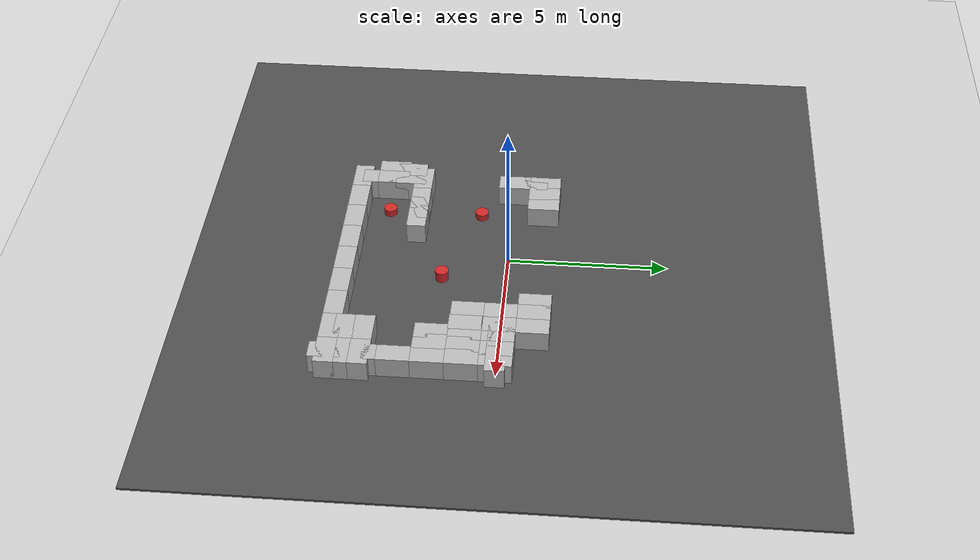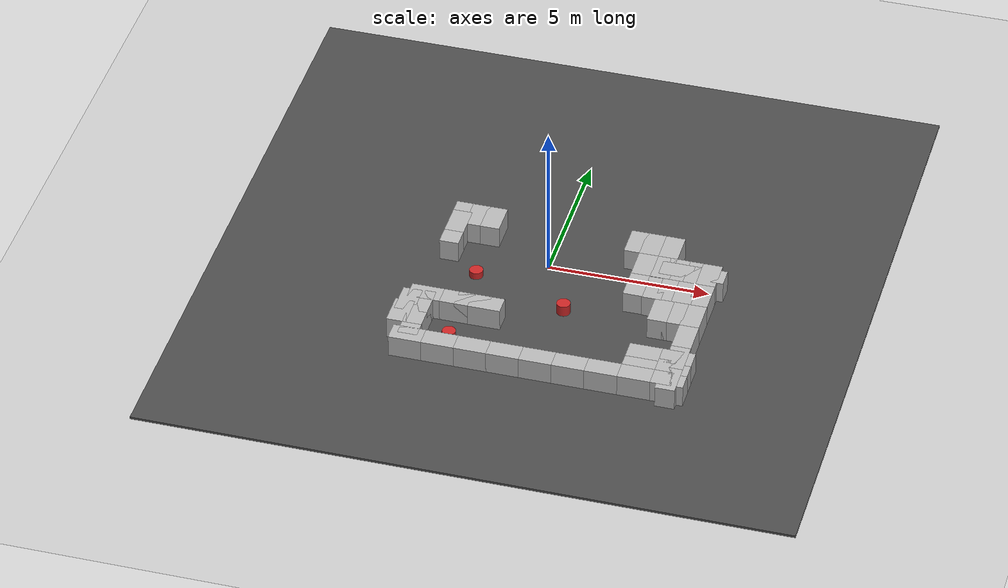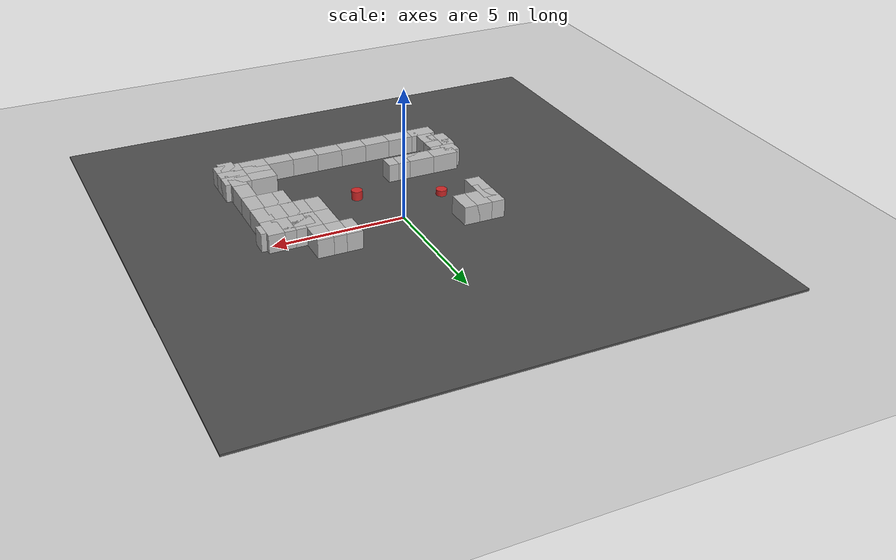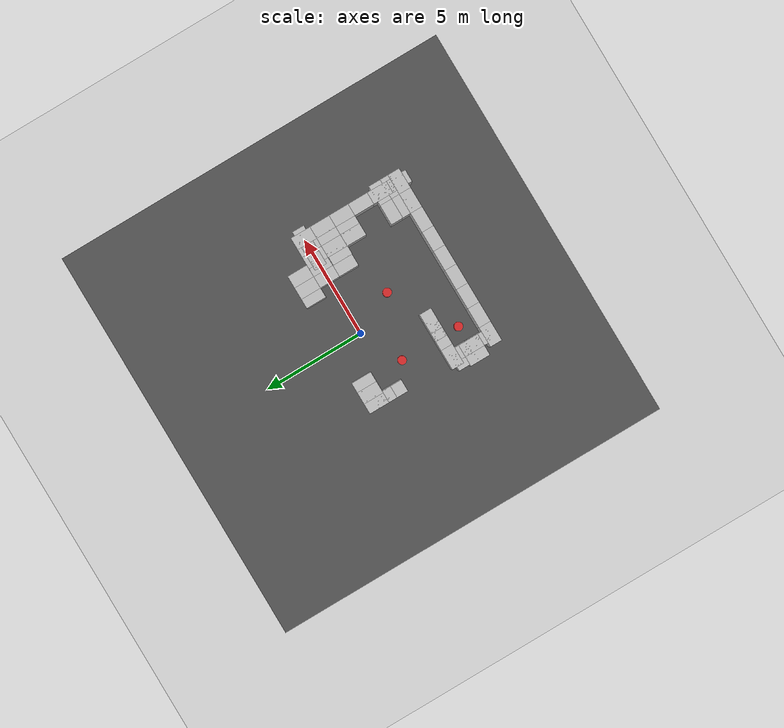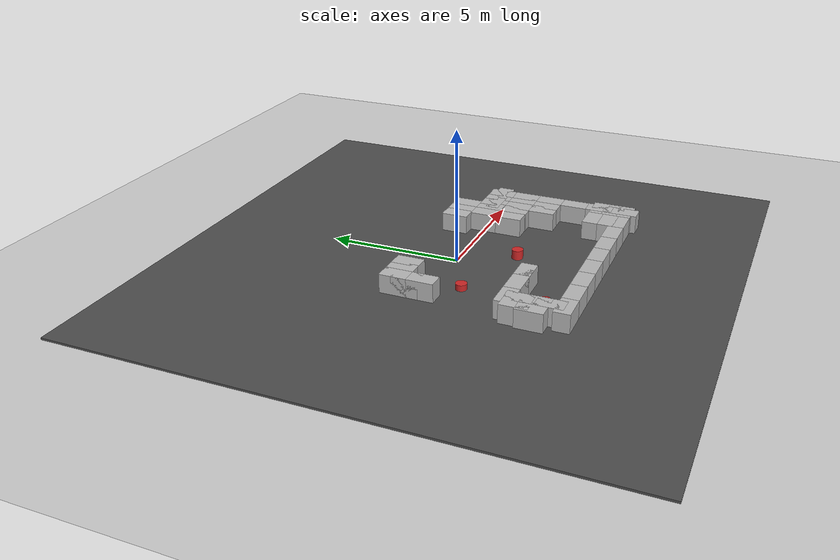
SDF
<sdf version="1.4">
 <world name="default">
  <model name="ground_plane">
   <static>1</static>
   <link name="link">
    <collision name="collision">
     <geometry><plane><normal>0 0 1</normal><size>100 100</size></plane></geometry>
     <surface><friction><ode><mu>100</mu><mu2>50</mu2></ode></friction></surface>
    </collision>
    <visual name="visual">
     <cast_shadows>0</cast_shadows>
     <geometry><plane><normal>0 0 1</normal><size>100 100</size></plane></geometry>
     <material>
      <script><uri>file://media/materials/scripts/gazebo.material</uri><name>Gazebo/Grey</name></script>
     </material>
    </visual>
    <velocity_decay><linear>0</linear><angular>0</angular></velocity_decay>
   </link>
  </model>
  <model name="wall_0">
   <static>1</static>
   <link name="link">
    <pose>0 0 0.25 0 -0 0</pose>
    <collision name="collision"><geometry><box><size>1 0.6 1</size></box></geometry></collision>
    <visual name="visual">
     <geometry>
      <mesh><uri>model://brick_box_3x1x3/meshes/simple_box.dae</uri><scale>1 0.6 1</scale></mesh>
     </geometry>
     <material>
      <script>
       <uri>model://brick_box_3x1x3/materials/scripts</uri>
       <uri>model://brick_box_3x1x3/materials/textures</uri>
       <name>BrickBox/Diffuse</name>
      </script>
     </material>
    </visual>
    <velocity_decay><linear>0</linear><angular>0</angular></velocity_decay>
   </link>
   <pose>4 -5 0 0 -0 0</pose>
  </model>
  <model name="wall_1">
   <static>1</static>
   <link name="link">
    <pose>0 0 0.25 0 -0 0</pose>
    <collision name="collision"><geometry><box><size>1 0.6 1</size></box></geometry></collision>
    <visual name="visual">
     <geometry>
      <mesh><uri>model://brick_box_3x1x3/meshes/simple_box.dae</uri><scale>1 0.6 1</scale></mesh>
     </geometry>
     <material>
      <script>
       <uri>model://brick_box_3x1x3/materials/scripts</uri>
       <uri>model://brick_box_3x1x3/materials/textures</uri>
       <name>BrickBox/Diffuse</name>
      </script>
     </material>
    </visual>
    <velocity_decay><linear>0</linear><angular>0</angular></velocity_decay>
   </link>
   <pose>3 -5 0 0 -0 0</pose>
  </model>
  <model name="wall_2">
   <static>1</static>
   <link name="link">
    <pose>0 0 0.25 0 -0 0</pose>
    <collision name="collision"><geometry><box><size>1 0.6 1</size></box></geometry></collision>
    <visual name="visual">
     <geometry>
      <mesh><uri>model://brick_box_3x1x3/meshes/simple_box.dae</uri><scale>1 0.6 1</scale></mesh>
     </geometry>
     <material>
      <script>
       <uri>model://brick_box_3x1x3/materials/scripts</uri>
       <uri>model://brick_box_3x1x3/materials/textures</uri>
       <name>BrickBox/Diffuse</name>
      </script>
     </material>
    </visual>
    <velocity_decay><linear>0</linear><angular>0</angular></velocity_decay>
   </link>
   <pose>2 -5 0 0 -0 0</pose>
  </model>
  <model name="wall_3">
   <static>1</static>
   <link name="link">
    <pose>0 0 0.25 0 -0 0</pose>
    <collision name="collision"><geometry><box><size>1 0.6 1</size></box></geometry></collision>
    <visual name="visual">
     <geometry>
      <mesh><uri>model://brick_box_3x1x3/meshes/simple_box.dae</uri><scale>1 0.6 1</scale></mesh>
     </geometry>
     <material>
      <script>
       <uri>model://brick_box_3x1x3/materials/scripts</uri>
       <uri>model://brick_box_3x1x3/materials/textures</uri>
       <name>BrickBox/Diffuse</name>
      </script>
     </material>
    </visual>
    <velocity_decay><linear>0</linear><angular>0</angular></velocity_decay>
   </link>
   <pose>5 -5 0 0 -0 0</pose>
  </model>
  <model name="wall_4">
   <static>1</static>
   <link name="link">
    <pose>0 0 0.25 0 -0 0</pose>
    <collision name="collision"><geometry><box><size>0.6 1 1</size></box></geometry></collision>
    <visual name="visual">
     <geometry>
      <mesh><uri>model://brick_box_3x1x3/meshes/simple_box.dae</uri><scale>0.6 1 1</scale></mesh>
     </geometry>
     <material>
      <script>
       <uri>model://brick_box_3x1x3/materials/scripts</uri>
       <uri>model://brick_box_3x1x3/materials/textures</uri>
       <name>BrickBox/Diffuse</name>
      </script>
     </material>
    </visual>
    <velocity_decay><linear>0</linear><angular>0</angular></velocity_decay>
   </link>
   <pose>5 -5 0 0 -0 0</pose>
  </model>
  <model name="wall_5">
   <static>1</static>
   <link name="link">
    <pose>0 0 0.25 0 -0 0</pose>
    <collision name="collision"><geometry><box><size>0.6 1 1</size></box></geometry></collision>
    <visual name="visual">
     <geometry>
      <mesh><uri>model://brick_box_3x1x3/meshes/simple_box.dae</uri><scale>0.6 1 1</scale></mesh>
     </geometry>
     <material>
      <script>
       <uri>model://brick_box_3x1x3/materials/scripts</uri>
       <uri>model://brick_box_3x1x3/materials/textures</uri>
       <name>BrickBox/Diffuse</name>
      </script>
     </material>
    </visual>
    <velocity_decay><linear>0</linear><angular>0</angular></velocity_decay>
   </link>
   <pose>5 -4 0 0 -0 0</pose>
  </model>
  <model name="wall_6">
   <static>1</static>
   <link name="link">
    <pose>0 0 0.25 0 -0 0</pose>
    <collision name="collision"><geometry><box><size>1 0.6 1</size></box></geometry></collision>
    <visual name="visual">
     <geometry>
      <mesh><uri>model://brick_box_3x1x3/meshes/simple_box.dae</uri><scale>1 0.6 1</scale></mesh>
     </geometry>
     <material>
      <script>
       <uri>model://brick_box_3x1x3/materials/scripts</uri>
       <uri>model://brick_box_3x1x3/materials/textures</uri>
       <name>BrickBox/Diffuse</name>
      </script>
     </material>
    </visual>
    <velocity_decay><linear>0</linear><angular>0</angular></velocity_decay>
   </link>
   <pose>1 -5 0 0 -0 0</pose>
  </model>
  <model name="wall_7">
   <static>1</static>
   <link name="link">
    <pose>0 0 0.25 0 -0 0</pose>
    <collision name="collision"><geometry><box><size>1 0.6 1</size></box></geometry></collision>
    <visual name="visual">
     <geometry>
      <mesh><uri>model://brick_box_3x1x3/meshes/simple_box.dae</uri><scale>1 0.6 1</scale></mesh>
     </geometry>
     <material>
      <script>
       <uri>model://brick_box_3x1x3/materials/scripts</uri>
       <uri>model://brick_box_3x1x3/materials/textures</uri>
       <name>BrickBox/Diffuse</name>
      </script>
     </material>
    </visual>
    <velocity_decay><linear>0</linear><angular>0</angular></velocity_decay>
   </link>
   <pose>0 -5 0 0 -0 0</pose>
  </model>
  <model name="wall_8">
   <static>1</static>
   <link name="link">
    <pose>0 0 0.25 0 -0 0</pose>
    <collision name="collision"><geometry><box><size>1 0.6 1</size></box></geometry></collision>
    <visual name="visual">
     <geometry>
      <mesh><uri>model://brick_box_3x1x3/meshes/simple_box.dae</uri><scale>1 0.6 1</scale></mesh>
     </geometry>
     <material>
      <script>
       <uri>model://brick_box_3x1x3/materials/scripts</uri>
       <uri>model://brick_box_3x1x3/materials/textures</uri>
       <name>BrickBox/Diffuse</name>
      </script>
     </material>
    </visual>
    <velocity_decay><linear>0</linear><angular>0</angular></velocity_decay>
   </link>
   <pose>-1 -5 0 0 -0 0</pose>
  </model>
  <model name="wall_9">
   <static>1</static>
   <link name="link">
    <pose>0 0 0.25 0 -0 0</pose>
    <collision name="collision"><geometry><box><size>1 0.6 1</size></box></geometry></collision>
    <visual name="visual">
     <geometry>
      <mesh><uri>model://brick_box_3x1x3/meshes/simple_box.dae</uri><scale>1 0.6 1</scale></mesh>
     </geometry>
     <material>
      <script>
       <uri>model://brick_box_3x1x3/materials/scripts</uri>
       <uri>model://brick_box_3x1x3/materials/textures</uri>
       <name>BrickBox/Diffuse</name>
      </script>
     </material>
    </visual>
    <velocity_decay><linear>0</linear><angular>0</angular></velocity_decay>
   </link>
   <pose>-2 -5 0 0 -0 0</pose>
  </model>
  <model name="wall_10">
   <static>1</static>
   <link name="link">
    <pose>0 0 0.25 0 -0 0</pose>
    <collision name="collision"><geometry><box><size>1 0.6 1</size></box></geometry></collision>
    <visual name="visual">
     <geometry>
      <mesh><uri>model://brick_box_3x1x3/meshes/simple_box.dae</uri><scale>1 0.6 1</scale></mesh>
     </geometry>
     <material>
      <script>
       <uri>model://brick_box_3x1x3/materials/scripts</uri>
       <uri>model://brick_box_3x1x3/materials/textures</uri>
       <name>BrickBox/Diffuse</name>
      </script>
     </material>
    </visual>
    <velocity_decay><linear>0</linear><angular>0</angular></velocity_decay>
   </link>
   <pose>-3 -5 0 0 -0 0</pose>
  </model>
  <model name="wall_13">
   <static>1</static>
   <link name="link">
    <pose>0 0 0.25 0 -0 0</pose>
    <collision name="collision"><geometry><box><size>0.6 1 1</size></box></geometry></collision>
    <visual name="visual">
     <geometry>
      <mesh><uri>model://brick_box_3x1x3/meshes/simple_box.dae</uri><scale>0.6 1 1</scale></mesh>
     </geometry>
     <material>
      <script>
       <uri>model://brick_box_3x1x3/materials/scripts</uri>
       <uri>model://brick_box_3x1x3/materials/textures</uri>
       <name>BrickBox/Diffuse</name>
      </script>
     </material>
    </visual>
    <velocity_decay><linear>0</linear><angular>0</angular></velocity_decay>
   </link>
   <pose>5 -3 0 0 -0 0</pose>
  </model>
  <model name="wall_14">
   <static>1</static>
   <link name="link">
    <pose>0 0 0.25 0 -0 0</pose>
    <collision name="collision"><geometry><box><size>0.6 1 1</size></box></geometry></collision>
    <visual name="visual">
     <geometry>
      <mesh><uri>model://brick_box_3x1x3/meshes/simple_box.dae</uri><scale>0.6 1 1</scale></mesh>
     </geometry>
     <material>
      <script>
       <uri>model://brick_box_3x1x3/materials/scripts</uri>
       <uri>model://brick_box_3x1x3/materials/textures</uri>
       <name>BrickBox/Diffuse</name>
      </script>
     </material>
    </visual>
    <velocity_decay><linear>0</linear><angular>0</angular></velocity_decay>
   </link>
   <pose>5 -2 0 0 -0 0</pose>
  </model>
  <model name="wall_15">
   <static>1</static>
   <link name="link">
    <pose>0 0 0.25 0 -0 0</pose>
    <collision name="collision"><geometry><box><size>0.6 1 1</size></box></geometry></collision>
    <visual name="visual">
     <geometry>
      <mesh><uri>model://brick_box_3x1x3/meshes/simple_box.dae</uri><scale>0.6 1 1</scale></mesh>
     </geometry>
     <material>
      <script>
       <uri>model://brick_box_3x1x3/materials/scripts</uri>
       <uri>model://brick_box_3x1x3/materials/textures</uri>
       <name>BrickBox/Diffuse</name>
      </script>
     </material>
    </visual>
    <velocity_decay><linear>0</linear><angular>0</angular></velocity_decay>
   </link>
   <pose>5 -1 0 0 -0 0</pose>
  </model>
  <model name="wall_16">
   <static>1</static>
   <link name="link">
    <pose>0 0 0.25 0 -0 0</pose>
    <collision name="collision"><geometry><box><size>0.6 1 1</size></box></geometry></collision>
    <visual name="visual">
     <geometry>
      <mesh><uri>model://brick_box_3x1x3/meshes/simple_box.dae</uri><scale>0.6 1 1</scale></mesh>
     </geometry>
     <material>
      <script>
       <uri>model://brick_box_3x1x3/materials/scripts</uri>
       <uri>model://brick_box_3x1x3/materials/textures</uri>
       <name>BrickBox/Diffuse</name>
      </script>
     </material>
    </visual>
    <velocity_decay><linear>0</linear><angular>0</angular></velocity_decay>
   </link>
   <pose>5 0 0 0 -0 0</pose>
  </model>
  <model name="wall_46">
   <static>1</static>
   <link name="link">
    <pose>0 0 0.25 0 -0 0</pose>
    <collision name="collision"><geometry><box><size>1 0.6 1</size></box></geometry></collision>
    <visual name="visual">
     <geometry>
      <mesh><uri>model://brick_box_3x1x3/meshes/simple_box.dae</uri><scale>1 0.6 1</scale></mesh>
     </geometry>
     <material>
      <script>
       <uri>model://brick_box_3x1x3/materials/scripts</uri>
       <uri>model://brick_box_3x1x3/materials/textures</uri>
       <name>BrickBox/Diffuse</name>
      </script>
     </material>
    </visual>
    <velocity_decay><linear>0</linear><angular>0</angular></velocity_decay>
   </link>
   <pose>5 0 0 0 -0 0</pose>
  </model>
  <model name="wall_47">
   <static>1</static>
   <link name="link">
    <pose>0 0 0.25 0 -0 0</pose>
    <collision name="collision"><geometry><box><size>1 0.6 1</size></box></geometry></collision>
    <visual name="visual">
     <geometry>
      <mesh><uri>model://brick_box_3x1x3/meshes/simple_box.dae</uri><scale>1 0.6 1</scale></mesh>
     </geometry>
     <material>
      <script>
       <uri>model://brick_box_3x1x3/materials/scripts</uri>
       <uri>model://brick_box_3x1x3/materials/textures</uri>
       <name>BrickBox/Diffuse</name>
      </script>
     </material>
    </visual>
    <velocity_decay><linear>0</linear><angular>0</angular></velocity_decay>
   </link>
   <pose>4 0 0 0 -0 0</pose>
  </model>
  <model name="wall_58">
   <static>1</static>
   <link name="link">
    <pose>0 0 0.25 0 -0 0</pose>
    <collision name="collision"><geometry><box><size>1 0.6 1</size></box></geometry></collision>
    <visual name="visual">
     <geometry>
      <mesh><uri>model://brick_box_3x1x3/meshes/simple_box.dae</uri><scale>1 0.6 1</scale></mesh>
     </geometry>
     <material>
      <script>
       <uri>model://brick_box_3x1x3/materials/scripts</uri>
       <uri>model://brick_box_3x1x3/materials/textures</uri>
       <name>BrickBox/Diffuse</name>
      </script>
     </material>
    </visual>
    <velocity_decay><linear>0</linear><angular>0</angular></velocity_decay>
   </link>
   <pose>-1.12325 -3.00148 0 0 -0 0</pose>
  </model>
  <model name="wall_62">
   <static>1</static>
   <link name="link">
    <pose>0 0 0.25 0 -0 0</pose>
    <collision name="collision"><geometry><box><size>1 0.6 1</size></box></geometry></collision>
    <visual name="visual">
     <geometry>
      <mesh><uri>model://brick_box_3x1x3/meshes/simple_box.dae</uri><scale>1 0.6 1</scale></mesh>
     </geometry>
     <material>
      <script>
       <uri>model://brick_box_3x1x3/materials/scripts</uri>
       <uri>model://brick_box_3x1x3/materials/textures</uri>
       <name>BrickBox/Diffuse</name>
      </script>
     </material>
    </visual>
    <velocity_decay><linear>0</linear><angular>0</angular></velocity_decay>
   </link>
   <pose>-1.53695 -3 0 0 -0 0</pose>
  </model>
  <model name="wall_84">
   <static>1</static>
   <link name="link">
    <pose>0 0 0.25 0 -0 0</pose>
    <collision name="collision"><geometry><box><size>0.6 1 1</size></box></geometry></collision>
    <visual name="visual">
     <geometry>
      <mesh><uri>model://brick_box_3x1x3/meshes/simple_box.dae</uri><scale>0.6 1 1</scale></mesh>
     </geometry>
     <material>
      <script>
       <uri>model://brick_box_3x1x3/materials/scripts</uri>
       <uri>model://brick_box_3x1x3/materials/textures</uri>
       <name>BrickBox/Diffuse</name>
      </script>
     </material>
    </visual>
    <velocity_decay><linear>0</linear><angular>0</angular></velocity_decay>
   </link>
   <pose>4 0 0 0 -0 0</pose>
  </model>
  <model name="wall_85">
   <static>1</static>
   <link name="link">
    <pose>0 0 0.25 0 -0 0</pose>
    <collision name="collision"><geometry><box><size>0.6 1 1</size></box></geometry></collision>
    <visual name="visual">
     <geometry>
      <mesh><uri>model://brick_box_3x1x3/meshes/simple_box.dae</uri><scale>0.6 1 1</scale></mesh>
     </geometry>
     <material>
      <script>
       <uri>model://brick_box_3x1x3/materials/scripts</uri>
       <uri>model://brick_box_3x1x3/materials/textures</uri>
       <name>BrickBox/Diffuse</name>
      </script>
     </material>
    </visual>
    <velocity_decay><linear>0</linear><angular>0</angular></velocity_decay>
   </link>
   <pose>4 -1 0 0 -0 0</pose>
  </model>
  <model name="wall_89">
   <static>1</static>
   <link name="link">
    <pose>0 0 0.25 0 -0 0</pose>
    <collision name="collision"><geometry><box><size>1 0.6 1</size></box></geometry></collision>
    <visual name="visual">
     <geometry>
      <mesh><uri>model://brick_box_3x1x3/meshes/simple_box.dae</uri><scale>1 0.6 1</scale></mesh>
     </geometry>
     <material>
      <script>
       <uri>model://brick_box_3x1x3/materials/scripts</uri>
       <uri>model://brick_box_3x1x3/materials/textures</uri>
       <name>BrickBox/Diffuse</name>
      </script>
     </material>
    </visual>
    <velocity_decay><linear>0</linear><angular>0</angular></velocity_decay>
   </link>
   <pose>-3 -3 0 0 -0 0</pose>
  </model>
  <model name="wall_90">
   <static>1</static>
   <link name="link">
    <pose>0 0 0.25 0 -0 0</pose>
    <collision name="collision"><geometry><box><size>1 0.6 1</size></box></geometry></collision>
    <visual name="visual">
     <geometry>
      <mesh><uri>model://brick_box_3x1x3/meshes/simple_box.dae</uri><scale>1 0.6 1</scale></mesh>
     </geometry>
     <material>
      <script>
       <uri>model://brick_box_3x1x3/materials/scripts</uri>
       <uri>model://brick_box_3x1x3/materials/textures</uri>
       <name>BrickBox/Diffuse</name>
      </script>
     </material>
    </visual>
    <velocity_decay><linear>0</linear><angular>0</angular></velocity_decay>
   </link>
   <pose>-2 -3 0 0 -0 0</pose>
  </model>
  <model name="wall_98">
   <static>1</static>
   <link name="link">
    <pose>0 0 0.25 0 -0 0</pose>
    <collision name="collision"><geometry><box><size>0.6 1 1</size></box></geometry></collision>
    <visual name="visual">
     <geometry>
      <mesh><uri>model://brick_box_3x1x3/meshes/simple_box.dae</uri><scale>0.6 1 1</scale></mesh>
     </geometry>
     <material>
      <script>
       <uri>model://brick_box_3x1x3/materials/scripts</uri>
       <uri>model://brick_box_3x1x3/materials/textures</uri>
       <name>BrickBox/Diffuse</name>
      </script>
     </material>
    </visual>
    <velocity_decay><linear>0</linear><angular>0</angular></velocity_decay>
   </link>
   <pose>3.57838 -1.01838 0 0 -0 0</pose>
  </model>
  <model name="wall_102">
   <static>1</static>
   <link name="link">
    <pose>0 0 0.25 0 -0 0</pose>
    <collision name="collision"><geometry><box><size>0.6 1 1</size></box></geometry></collision>
    <visual name="visual">
     <geometry>
      <mesh><uri>model://brick_box_3x1x3/meshes/simple_box.dae</uri><scale>0.6 1 1</scale></mesh>
     </geometry>
     <material>
      <script>
       <uri>model://brick_box_3x1x3/materials/scripts</uri>
       <uri>model://brick_box_3x1x3/materials/textures</uri>
       <name>BrickBox/Diffuse</name>
      </script>
     </material>
    </visual>
    <velocity_decay><linear>0</linear><angular>0</angular></velocity_decay>
   </link>
   <pose>3.59742 1 0 0 -0 0</pose>
  </model>
  <model name="wall_107">
   <static>1</static>
   <link name="link">
    <pose>0 0 0.25 0 -0 0</pose>
    <collision name="collision"><geometry><box><size>0.6 1 1</size></box></geometry></collision>
    <visual name="visual">
     <geometry>
      <mesh><uri>model://brick_box_3x1x3/meshes/simple_box.dae</uri><scale>0.6 1 1</scale></mesh>
     </geometry>
     <material>
      <script>
       <uri>model://brick_box_3x1x3/materials/scripts</uri>
       <uri>model://brick_box_3x1x3/materials/textures</uri>
       <name>BrickBox/Diffuse</name>
      </script>
     </material>
    </visual>
    <velocity_decay><linear>0</linear><angular>0</angular></velocity_decay>
   </link>
   <pose>4.49088 -1 0 0 -0 0</pose>
  </model>
  <model name="wall_108">
   <static>1</static>
   <link name="link">
    <pose>0 0 0.25 0 -0 0</pose>
    <collision name="collision"><geometry><box><size>0.6 1 1</size></box></geometry></collision>
    <visual name="visual">
     <geometry>
      <mesh><uri>model://brick_box_3x1x3/meshes/simple_box.dae</uri><scale>0.6 1 1</scale></mesh>
     </geometry>
     <material>
      <script>
       <uri>model://brick_box_3x1x3/materials/scripts</uri>
       <uri>model://brick_box_3x1x3/materials/textures</uri>
       <name>BrickBox/Diffuse</name>
      </script>
     </material>
    </visual>
    <velocity_decay><linear>0</linear><angular>0</angular></velocity_decay>
   </link>
   <pose>4.58016 0 0 0 -0 0</pose>
  </model>
  <model name="wall_95">
   <static>1</static>
   <link name="link">
    <pose>0 0 0.25 0 -0 0</pose>
    <collision name="collision"><geometry><box><size>0.6 1 1</size></box></geometry></collision>
    <visual name="visual">
     <geometry>
      <mesh><uri>model://brick_box_3x1x3/meshes/simple_box.dae</uri><scale>0.6 1 1</scale></mesh>
     </geometry>
     <material>
      <script>
       <uri>model://brick_box_3x1x3/materials/scripts</uri>
       <uri>model://brick_box_3x1x3/materials/textures</uri>
       <name>BrickBox/Diffuse</name>
      </script>
     </material>
    </visual>
    <velocity_decay><linear>0</linear><angular>0</angular></velocity_decay>
   </link>
   <pose>-2.48811 1 0 0 -0 0</pose>
  </model>
  <model name="wall_111">
   <static>1</static>
   <link name="link">
    <pose>0 0 0.25 0 -0 0</pose>
    <collision name="collision"><geometry><box><size>0.6 1 1</size></box></geometry></collision>
    <visual name="visual">
     <geometry>
      <mesh><uri>model://brick_box_3x1x3/meshes/simple_box.dae</uri><scale>0.6 1 1</scale></mesh>
     </geometry>
     <material>
      <script>
       <uri>model://brick_box_3x1x3/materials/scripts</uri>
       <uri>model://brick_box_3x1x3/materials/textures</uri>
       <name>BrickBox/Diffuse</name>
      </script>
     </material>
    </visual>
    <velocity_decay><linear>0</linear><angular>0</angular></velocity_decay>
   </link>
   <pose>-3 1 0 0 -0 0</pose>
  </model>
  <model name="wall_118">
   <static>1</static>
   <link name="link">
    <pose>0 0 0.25 0 -0 0</pose>
    <collision name="collision"><geometry><box><size>0.6 1 1</size></box></geometry></collision>
    <visual name="visual">
     <geometry>
      <mesh><uri>model://brick_box_3x1x3/meshes/simple_box.dae</uri><scale>0.6 1 1</scale></mesh>
     </geometry>
     <material>
      <script>
       <uri>model://brick_box_3x1x3/materials/scripts</uri>
       <uri>model://brick_box_3x1x3/materials/textures</uri>
       <name>BrickBox/Diffuse</name>
      </script>
     </material>
    </visual>
    <velocity_decay><linear>0</linear><angular>0</angular></velocity_decay>
   </link>
   <pose>-3 0.570684 0 0 -0 0</pose>
  </model>
  <model name="wall_120">
   <static>1</static>
   <link name="link">
    <pose>0 0 0.25 0 -0 0</pose>
    <collision name="collision"><geometry><box><size>1 0.6 1</size></box></geometry></collision>
    <visual name="visual">
     <geometry>
      <mesh><uri>model://brick_box_3x1x3/meshes/simple_box.dae</uri><scale>1 0.6 1</scale></mesh>
     </geometry>
     <material>
      <script>
       <uri>model://brick_box_3x1x3/materials/scripts</uri>
       <uri>model://brick_box_3x1x3/materials/textures</uri>
       <name>BrickBox/Diffuse</name>
      </script>
     </material>
    </visual>
    <velocity_decay><linear>0</linear><angular>0</angular></velocity_decay>
   </link>
   <pose>4 -4 0 0 -0 0</pose>
  </model>
  <model name="wall_121">
   <static>1</static>
   <link name="link">
    <pose>0 0 0.25 0 -0 0</pose>
    <collision name="collision"><geometry><box><size>1 0.6 1</size></box></geometry></collision>
    <visual name="visual">
     <geometry>
      <mesh><uri>model://brick_box_3x1x3/meshes/simple_box.dae</uri><scale>1 0.6 1</scale></mesh>
     </geometry>
     <material>
      <script>
       <uri>model://brick_box_3x1x3/materials/scripts</uri>
       <uri>model://brick_box_3x1x3/materials/textures</uri>
       <name>BrickBox/Diffuse</name>
      </script>
     </material>
    </visual>
    <velocity_decay><linear>0</linear><angular>0</angular></velocity_decay>
   </link>
   <pose>4 -4.57816 0 0 -0 0</pose>
  </model>
  <model name="wall_122">
   <static>1</static>
   <link name="link">
    <pose>0 0 0.25 0 -0 0</pose>
    <collision name="collision"><geometry><box><size>1 0.6 1</size></box></geometry></collision>
    <visual name="visual">
     <geometry>
      <mesh><uri>model://brick_box_3x1x3/meshes/simple_box.dae</uri><scale>1 0.6 1</scale></mesh>
     </geometry>
     <material>
      <script>
       <uri>model://brick_box_3x1x3/materials/scripts</uri>
       <uri>model://brick_box_3x1x3/materials/textures</uri>
       <name>BrickBox/Diffuse</name>
      </script>
     </material>
    </visual>
    <velocity_decay><linear>0</linear><angular>0</angular></velocity_decay>
   </link>
   <pose>5 -4 0 0 -0 0</pose>
  </model>
  <model name="wall_123">
   <static>1</static>
   <link name="link">
    <pose>0 0 0.25 0 -0 0</pose>
    <collision name="collision"><geometry><box><size>1 0.6 1</size></box></geometry></collision>
    <visual name="visual">
     <geometry>
      <mesh><uri>model://brick_box_3x1x3/meshes/simple_box.dae</uri><scale>1 0.6 1</scale></mesh>
     </geometry>
     <material>
      <script>
       <uri>model://brick_box_3x1x3/materials/scripts</uri>
       <uri>model://brick_box_3x1x3/materials/textures</uri>
       <name>BrickBox/Diffuse</name>
      </script>
     </material>
    </visual>
    <velocity_decay><linear>0</linear><angular>0</angular></velocity_decay>
   </link>
   <pose>5 -4.47642 0 0 -0 0</pose>
  </model>
  <model name="wall_141">
   <static>1</static>
   <link name="link">
    <pose>0 0 0.25 0 -0 0</pose>
    <collision name="collision"><geometry><box><size>0.6 1 1</size></box></geometry></collision>
    <visual name="visual">
     <geometry>
      <mesh><uri>model://brick_box_3x1x3/meshes/simple_box.dae</uri><scale>0.6 1 1</scale></mesh>
     </geometry>
     <material>
      <script>
       <uri>model://brick_box_3x1x3/materials/scripts</uri>
       <uri>model://brick_box_3x1x3/materials/textures</uri>
       <name>BrickBox/Diffuse</name>
      </script>
     </material>
    </visual>
    <velocity_decay><linear>0</linear><angular>0</angular></velocity_decay>
   </link>
   <pose>4 -2 0 0 -0 0</pose>
  </model>
  <model name="wall_142">
   <static>1</static>
   <link name="link">
    <pose>0 0 0.25 0 -0 0</pose>
    <collision name="collision"><geometry><box><size>0.6 1 1</size></box></geometry></collision>
    <visual name="visual">
     <geometry>
      <mesh><uri>model://brick_box_3x1x3/meshes/simple_box.dae</uri><scale>0.6 1 1</scale></mesh>
     </geometry>
     <material>
      <script>
       <uri>model://brick_box_3x1x3/materials/scripts</uri>
       <uri>model://brick_box_3x1x3/materials/textures</uri>
       <name>BrickBox/Diffuse</name>
      </script>
     </material>
    </visual>
    <velocity_decay><linear>0</linear><angular>0</angular></velocity_decay>
   </link>
   <pose>4.44193 -2 0 0 -0 0</pose>
  </model>
  <model name="wall_77">
   <static>1</static>
   <link name="link">
    <pose>0 0 0.25 0 -0 0</pose>
    <collision name="collision"><geometry><box><size>0.6 1 1</size></box></geometry></collision>
    <visual name="visual">
     <geometry>
      <mesh><uri>model://brick_box_3x1x3/meshes/simple_box.dae</uri><scale>0.6 1 1</scale></mesh>
     </geometry>
     <material>
      <script>
       <uri>model://brick_box_3x1x3/materials/scripts</uri>
       <uri>model://brick_box_3x1x3/materials/textures</uri>
       <name>BrickBox/Diffuse</name>
      </script>
     </material>
    </visual>
    <velocity_decay><linear>0</linear><angular>0</angular></velocity_decay>
   </link>
   <pose>-3 -4 0 0 -0 0</pose>
  </model>
  <model name="wall_94">
   <static>1</static>
   <link name="link">
    <pose>0 0 0.25 0 -0 0</pose>
    <collision name="collision"><geometry><box><size>0.6 1 1</size></box></geometry></collision>
    <visual name="visual">
     <geometry>
      <mesh><uri>model://brick_box_3x1x3/meshes/simple_box.dae</uri><scale>0.6 1 1</scale></mesh>
     </geometry>
     <material>
      <script>
       <uri>model://brick_box_3x1x3/materials/scripts</uri>
       <uri>model://brick_box_3x1x3/materials/textures</uri>
       <name>BrickBox/Diffuse</name>
      </script>
     </material>
    </visual>
    <velocity_decay><linear>0</linear><angular>0</angular></velocity_decay>
   </link>
   <pose>-3.49086 -4 0 0 -0 0</pose>
  </model>
  <model name="wall_99">
   <static>1</static>
   <link name="link">
    <pose>0 0 0.25 0 -0 0</pose>
    <collision name="collision"><geometry><box><size>0.6 1 1</size></box></geometry></collision>
    <visual name="visual">
     <geometry>
      <mesh><uri>model://brick_box_3x1x3/meshes/simple_box.dae</uri><scale>0.6 1 1</scale></mesh>
     </geometry>
     <material>
      <script>
       <uri>model://brick_box_3x1x3/materials/scripts</uri>
       <uri>model://brick_box_3x1x3/materials/textures</uri>
       <name>BrickBox/Diffuse</name>
      </script>
     </material>
    </visual>
    <velocity_decay><linear>0</linear><angular>0</angular></velocity_decay>
   </link>
   <pose>-3 -3.41548 0 0 -0 0</pose>
  </model>
  <model name="wall_103">
   <static>1</static>
   <link name="link">
    <pose>0 0 0.25 0 -0 0</pose>
    <collision name="collision"><geometry><box><size>0.6 1 1</size></box></geometry></collision>
    <visual name="visual">
     <geometry>
      <mesh><uri>model://brick_box_3x1x3/meshes/simple_box.dae</uri><scale>0.6 1 1</scale></mesh>
     </geometry>
     <material>
      <script>
       <uri>model://brick_box_3x1x3/materials/scripts</uri>
       <uri>model://brick_box_3x1x3/materials/textures</uri>
       <name>BrickBox/Diffuse</name>
      </script>
     </material>
    </visual>
    <velocity_decay><linear>0</linear><angular>0</angular></velocity_decay>
   </link>
   <pose>-3 -4.50108 0 0 -0 0</pose>
  </model>
  <model name="wall_148">
   <static>1</static>
   <link name="link">
    <pose>0 0 0.25 0 -0 0</pose>
    <collision name="collision"><geometry><box><size>0.6 1 1</size></box></geometry></collision>
    <visual name="visual">
     <geometry>
      <mesh><uri>model://brick_box_3x1x3/meshes/simple_box.dae</uri><scale>0.6 1 1</scale></mesh>
     </geometry>
     <material>
      <script>
       <uri>model://brick_box_3x1x3/materials/scripts</uri>
       <uri>model://brick_box_3x1x3/materials/textures</uri>
       <name>BrickBox/Diffuse</name>
      </script>
     </material>
    </visual>
    <velocity_decay><linear>0</linear><angular>0</angular></velocity_decay>
   </link>
   <pose>-3.41094 -3.44006 0 0 -0 0</pose>
  </model>
  <model name="movable_1">
   <link name="link">
    <pose>0 0 0.23 0 -0 0</pose>
    <collision name="collision">
     <geometry><cylinder><radius>0.0001</radius><length>0.001</length></cylinder></geometry>
    </collision>
    <visual name="visual">
     <geometry><cylinder><radius>0.21</radius><length>0.45</length></cylinder></geometry>
     <material>
      <script><uri>file://media/materials/scripts/gazebo.material</uri><name>Gazebo/Red</name></script>
     </material>
    </visual>
    <velocity_decay><linear>0</linear><angular>0</angular></velocity_decay>
    <inertial>
     <inertia><ixx>1</ixx><ixy>0</ixy><ixz>0</ixz><iyy>1</iyy><iyz>0</iyz><izz>1</izz></inertia>
     <mass>1</mass>
    </inertial>
   </link>
   <pose>-2.0004 -4.00097 -0.179497 -0.004232 0.001748 -4e-06</pose>
   <static>0</static>
  </model>
  <model name="movable_2">
   <link name="link">
    <pose>0 0 0.23 0 -0 0</pose>
    <collision name="collision">
     <geometry><cylinder><radius>0.0001</radius><length>0.001</length></cylinder></geometry>
    </collision>
    <visual name="visual">
     <geometry><cylinder><radius>0.21</radius><length>0.45</length></cylinder></geometry>
     <material>
      <script><uri>file://media/materials/scripts/gazebo.material</uri><name>Gazebo/Red</name></script>
     </material>
    </visual>
    <velocity_decay><linear>0</linear><angular>0</angular></velocity_decay>
    <inertial>
     <inertia><ixx>1</ixx><ixy>0</ixy><ixz>0</ixz><iyy>1</iyy><iyz>0</iyz><izz>1</izz></inertia>
     <mass>1</mass>
    </inertial>
   </link>
   <pose>-2.0004 -1.00097 -0.179507 -0.004224 0.001746 -4e-06</pose>
   <static>0</static>
  </model>
  <model name="wall_27">
   <static>1</static>
   <link name="link">
    <pose>0 0 0.25 0 -0 0</pose>
    <collision name="collision"><geometry><box><size>0.6 1 1</size></box></geometry></collision>
    <visual name="visual">
     <geometry>
      <mesh><uri>model://brick_box_3x1x3/meshes/simple_box.dae</uri><scale>0.6 1 1</scale></mesh>
     </geometry>
     <material>
      <script>
       <uri>model://brick_box_3x1x3/materials/scripts</uri>
       <uri>model://brick_box_3x1x3/materials/textures</uri>
       <name>BrickBox/Diffuse</name>
      </script>
     </material>
    </visual>
    <velocity_decay><linear>0</linear><angular>0</angular></velocity_decay>
   </link>
   <pose>3.58791 -0.001053 0 0 -0 0</pose>
  </model>
  <model name="wall_57">
   <static>1</static>
   <link name="link">
    <pose>0 0 0.25 0 -0 0</pose>
    <collision name="collision"><geometry><box><size>0.6 1 1</size></box></geometry></collision>
    <visual name="visual">
     <geometry>
      <mesh><uri>model://brick_box_3x1x3/meshes/simple_box.dae</uri><scale>0.6 1 1</scale></mesh>
     </geometry>
     <material>
      <script>
       <uri>model://brick_box_3x1x3/materials/scripts</uri>
       <uri>model://brick_box_3x1x3/materials/textures</uri>
       <name>BrickBox/Diffuse</name>
      </script>
     </material>
    </visual>
    <velocity_decay><linear>0</linear><angular>0</angular></velocity_decay>
   </link>
   <pose>3 1 0 0 -0 0</pose>
  </model>
  <model name="wall_92">
   <static>1</static>
   <link name="link">
    <pose>0 0 0.25 0 -0 0</pose>
    <collision name="collision"><geometry><box><size>0.6 1 1</size></box></geometry></collision>
    <visual name="visual">
     <geometry>
      <mesh><uri>model://brick_box_3x1x3/meshes/simple_box.dae</uri><scale>0.6 1 1</scale></mesh>
     </geometry>
     <material>
      <script>
       <uri>model://brick_box_3x1x3/materials/scripts</uri>
       <uri>model://brick_box_3x1x3/materials/textures</uri>
       <name>BrickBox/Diffuse</name>
      </script>
     </material>
    </visual>
    <velocity_decay><linear>0</linear><angular>0</angular></velocity_decay>
   </link>
   <pose>3 0 0 0 -0 0</pose>
  </model>
  <model name="wall_97">
   <static>1</static>
   <link name="link">
    <pose>0 0 0.25 0 -0 0</pose>
    <collision name="collision"><geometry><box><size>0.6 1 1</size></box></geometry></collision>
    <visual name="visual">
     <geometry>
      <mesh><uri>model://brick_box_3x1x3/meshes/simple_box.dae</uri><scale>0.6 1 1</scale></mesh>
     </geometry>
     <material>
      <script>
       <uri>model://brick_box_3x1x3/materials/scripts</uri>
       <uri>model://brick_box_3x1x3/materials/textures</uri>
       <name>BrickBox/Diffuse</name>
      </script>
     </material>
    </visual>
    <velocity_decay><linear>0</linear><angular>0</angular></velocity_decay>
   </link>
   <pose>3 -1 0 0 -0 0</pose>
  </model>
  <model name="wall_158">
   <static>1</static>
   <link name="link">
    <pose>0 0 0.25 0 -0 0</pose>
    <collision name="collision"><geometry><box><size>0.6 1 1</size></box></geometry></collision>
    <visual name="visual">
     <geometry>
      <mesh><uri>model://brick_box_3x1x3/meshes/simple_box.dae</uri><scale>0.6 1 1</scale></mesh>
     </geometry>
     <material>
      <script>
       <uri>model://brick_box_3x1x3/materials/scripts</uri>
       <uri>model://brick_box_3x1x3/materials/textures</uri>
       <name>BrickBox/Diffuse</name>
      </script>
     </material>
    </visual>
    <velocity_decay><linear>0</linear><angular>0</angular></velocity_decay>
   </link>
   <pose>2.52224 1 0 0 -0 0</pose>
  </model>
  <model name="wall_164">
   <static>1</static>
   <link name="link">
    <pose>0 0 0.25 0 -0 0</pose>
    <collision name="collision"><geometry><box><size>0.6 1 1</size></box></geometry></collision>
    <visual name="visual">
     <geometry>
      <mesh><uri>model://brick_box_3x1x3/meshes/simple_box.dae</uri><scale>0.6 1 1</scale></mesh>
     </geometry>
     <material>
      <script>
       <uri>model://brick_box_3x1x3/materials/scripts</uri>
       <uri>model://brick_box_3x1x3/materials/textures</uri>
       <name>BrickBox/Diffuse</name>
      </script>
     </material>
    </visual>
    <velocity_decay><linear>0</linear><angular>0</angular></velocity_decay>
   </link>
   <pose>-3 0 0 0 -0 0</pose>
  </model>
  <model name="wall_166">
   <static>1</static>
   <link name="link">
    <pose>0 0 0.25 0 -0 0</pose>
    <collision name="collision"><geometry><box><size>0.6 1 1</size></box></geometry></collision>
    <visual name="visual">
     <geometry>
      <mesh><uri>model://brick_box_3x1x3/meshes/simple_box.dae</uri><scale>0.6 1 1</scale></mesh>
     </geometry>
     <material>
      <script>
       <uri>model://brick_box_3x1x3/materials/scripts</uri>
       <uri>model://brick_box_3x1x3/materials/textures</uri>
       <name>BrickBox/Diffuse</name>
      </script>
     </material>
    </visual>
    <velocity_decay><linear>0</linear><angular>0</angular></velocity_decay>
   </link>
   <pose>-2 1 0 0 -0 0</pose>
  </model>
  <model name="asphalt_plane">
   <static>1</static>
   <link name="link">
    <collision name="collision"><geometry><box><size>20 20 0.1</size></box></geometry></collision>
    <visual name="visual">
     <cast_shadows>0</cast_shadows>
     <geometry><box><size>20 20 0.1</size></box></geometry>
     <material>
      <script>
       <uri>model://asphalt_plane/materials/scripts</uri>
       <uri>model://asphalt_plane/materials/textures</uri>
       <name>vrc/asphalt</name>
      </script>
     </material>
    </visual>
    <velocity_decay><linear>0</linear><angular>0</angular></velocity_decay>
   </link>
  </model>
  <model name="coke_can">
   <pose>0.999736 -1.99982 0.224998 -3.1e-05 -2e-05 -2e-05</pose>
   <link name="gl_">
    <collision name="collision">
     <geometry><cylinder><radius>0.21</radius><length>0.35</length></cylinder></geometry>
    </collision>
    <visual name="visual">
     <geometry><cylinder><radius>0.21</radius><length>0.35</length></cylinder></geometry>
     <material>
      <script><uri>file://media/materials/scripts/gazebo.material</uri><name>Gazebo/Red</name></script>
     </material>
    </visual>
    <velocity_decay><linear>0</linear><angular>0</angular></velocity_decay>
    <inertial>
     <inertia><ixx>1</ixx><ixy>0</ixy><ixz>0</ixz><iyy>1</iyy><iyz>0</iyz><izz>1</izz></inertia>
     <mass>1</mass>
    </inertial>
   </link>
   <static>0</static>
  </model>
 </world>
</sdf>
